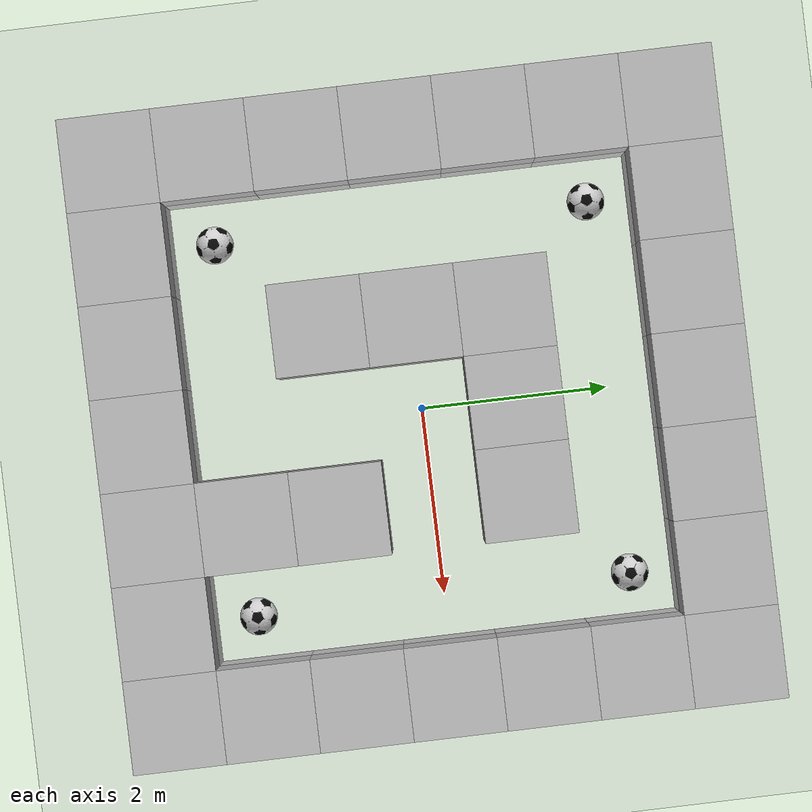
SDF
<?xml version="1.0"?>
<sdf version="1.9">
  <world name="centered_maze_world">

    <physics name="1ms" type="ignored">
      <max_step_size>0.001</max_step_size>
      <real_time_factor>1.0</real_time_factor>
      <dart>
      <collision_detector>ode</collision_detector>
      <solver>
        <solver_type>dantzig</solver_type>
      </solver>
      </dart>
    </physics>
    <plugin filename="gz-sim-physics-system" name="gz::sim::systems::Physics">
	    <engine>
    		<filename>gz-physics-dartsim-plugin</filename>
  	  </engine>
    </plugin>
    <plugin
      filename="gz-sim-user-commands-system"
      name="gz::sim::systems::UserCommands">
    </plugin>
    <plugin
      filename="gz-sim-scene-broadcaster-system"
      name="gz::sim::systems::SceneBroadcaster">
    </plugin>

    <scene>
      <sky>
        <time>23.0</time>
        <clouds>
          <direction>0.5</direction>
          <mean_size>1.0</mean_size>
          <humidity>1.0</humidity>
          <speed>100.0</speed>
          <ambient>1.0 0 0 0</ambient>
        </clouds>
      </sky>
    </scene>

    <!--light-->
    <light type="directional" name="sun">
      <cast_shadows>true</cast_shadows>
      <pose>0 10 10 0 0 0</pose>
      <diffuse>0.8 0.8 0.8 1</diffuse>
      <specular>0.2 0.2 0.2 1</specular>
      <attenuation>
        <range>1000</range>
        <constant>0.9</constant>
        <linear>0.01</linear>
        <quadratic>0.001</quadratic>
      </attenuation>
      <direction>-0.5 0.1 -0.9</direction>
    </light>

	  <include>
      <uri>model://ground_plane</uri>
    </include>

    <model name="wall_0_0">
      <include>
        <uri>model://my_brick_box</uri>
      </include>
      <pose>-3 -3 0 0 0 0</pose>
    </model>
    <model name="wall_1_0">
      <include>
        <uri>model://my_brick_box</uri>
      </include>
      <pose>-2 -3 0 0 0 0</pose>
    </model>
    <model name="wall_2_0">
      <include>
        <uri>model://my_brick_box</uri>
      </include>
      <pose>-1 -3 0 0 0 0</pose>
    </model>
    <model name="wall_3_0">
      <include>
        <uri>model://my_brick_box</uri>
      </include>
      <pose>0 -3 0 0 0 0</pose>
    </model>
    <model name="wall_4_0">
      <include>
        <uri>model://my_brick_box</uri>
      </include>
      <pose>1 -3 0 0 0 0</pose>
    </model>
    <model name="wall_5_0">
      <include>
        <uri>model://my_brick_box</uri>
      </include>
      <pose>2 -3 0 0 0 0</pose>
    </model>
    <model name="wall_6_0">
      <include>
        <uri>model://my_brick_box</uri>
      </include>
      <pose>3 -3 0 0 0 0</pose>
    </model>
    <model name="wall_0_1">
      <include>
        <uri>model://my_brick_box</uri>
      </include>
      <pose>-3 -2 0 0 0 0</pose>
    </model>
    <model name="wall_4_1">
      <include>
        <uri>model://my_brick_box</uri>
      </include>
      <pose>1 -2 0 0 0 0</pose>
    </model>
    <model name="wall_6_1">
      <include>
        <uri>model://my_brick_box</uri>
      </include>
      <pose>3 -2 0 0 0 0</pose>
    </model>
    <model name="wall_0_2">
      <include>
        <uri>model://my_brick_box</uri>
      </include>
      <pose>-3 -1 0 0 0 0</pose>
    </model>
    <model name="wall_2_2">
      <include>
        <uri>model://my_brick_box</uri>
      </include>
      <pose>-1 -1 0 0 0 0</pose>
    </model>
    <model name="wall_4_2">
      <include>
        <uri>model://my_brick_box</uri>
      </include>
      <pose>1 -1 0 0 0 0</pose>
    </model>
    <model name="wall_6_2">
      <include>
        <uri>model://my_brick_box</uri>
      </include>
      <pose>3 -1 0 0 0 0</pose>
    </model>
    <model name="wall_0_3">
      <include>
        <uri>model://my_brick_box</uri>
      </include>
      <pose>-3 0 0 0 0 0</pose>
    </model>
    <model name="wall_2_3">
      <include>
        <uri>model://my_brick_box</uri>
      </include>
      <pose>-1 0 0 0 0 0</pose>
    </model>
    <model name="wall_6_3">
      <include>
        <uri>model://my_brick_box</uri>
      </include>
      <pose>3 0 0 0 0 0</pose>
    </model>
    <model name="wall_0_4">
      <include>
        <uri>model://my_brick_box</uri>
      </include>
      <pose>-3 1 0 0 0 0</pose>
    </model>
    <model name="wall_2_4">
      <include>
        <uri>model://my_brick_box</uri>
      </include>
      <pose>-1 1 0 0 0 0</pose>
    </model>
    <model name="wall_3_4">
      <include>
        <uri>model://my_brick_box</uri>
      </include>
      <pose>0 1 0 0 0 0</pose>
    </model>
    <model name="wall_4_4">
      <include>
        <uri>model://my_brick_box</uri>
      </include>
      <pose>1 1 0 0 0 0</pose>
    </model>
    <model name="wall_6_4">
      <include>
        <uri>model://my_brick_box</uri>
      </include>
      <pose>3 1 0 0 0 0</pose>
    </model>
    <model name="wall_0_5">
      <include>
        <uri>model://my_brick_box</uri>
      </include>
      <pose>-3 2 0 0 0 0</pose>
    </model>
    <model name="wall_6_5">
      <include>
        <uri>model://my_brick_box</uri>
      </include>
      <pose>3 2 0 0 0 0</pose>
    </model>
    <model name="wall_0_6">
      <include>
        <uri>model://my_brick_box</uri>
      </include>
      <pose>-3 3 0 0 0 0</pose>
    </model>
    <model name="wall_1_6">
      <include>
        <uri>model://my_brick_box</uri>
      </include>
      <pose>-2 3 0 0 0 0</pose>
    </model>
    <model name="wall_2_6">
      <include>
        <uri>model://my_brick_box</uri>
      </include>
      <pose>-1 3 0 0 0 0</pose>
    </model>
    <model name="wall_3_6">
      <include>
        <uri>model://my_brick_box</uri>
      </include>
      <pose>0 3 0 0 0 0</pose>
    </model>
    <model name="wall_4_6">
      <include>
        <uri>model://my_brick_box</uri>
      </include>
      <pose>1 3 0 0 0 0</pose>
    </model>
    <model name="wall_5_6">
      <include>
        <uri>model://my_brick_box</uri>
      </include>
      <pose>2 3 0 0 0 0</pose>
    </model>
    <model name="wall_6_6">
      <include>
        <uri>model://my_brick_box</uri>
      </include>
      <pose>3 3 0 0 0 0</pose>
    </model>

    <!-- FOOTBALLS -->
    <model name="ball_0">
      <include>
        <uri>model://robocup_3Dsim_ball</uri>
      </include>
      <pose>-2 2 0 0 0 0</pose>
    </model>
    <model name="ball_1">
      <include>
        <uri>model://robocup_3Dsim_ball</uri>
      </include>
      <pose>2 -2 0 0 0 0</pose>
    </model>
    <model name="ball_2">
      <include>
        <uri>model://robocup_3Dsim_ball</uri>
      </include>
      <pose>2 2 0 0 0 0</pose>
    </model>
    <model name="ball_3">
      <include>
        <uri>model://robocup_3Dsim_ball</uri>
      </include>
      <pose>-2 -2 0 0 0 0</pose>
    </model>
  </world>
</sdf>

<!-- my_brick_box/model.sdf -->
<sdf version="1.5">
  <model name="my_brick_box">
    <static>true</static>
    <link name="chassis">
      <pose>0 0 0 0 0 0</pose>
      <collision name="collision">
        <geometry>
          <box>
            <size>1.0 1.0 1.0</size>
          </box>
        </geometry>
      </collision>
      <visual name="visual">
        <geometry>
          <mesh>
            <uri>model://my_brick_box/meshes/simple_box.dae</uri>
            <scale>1.0 1.0 1.0</scale>
          </mesh>
        </geometry>
      </visual>
    </link>
  </model>
</sdf>

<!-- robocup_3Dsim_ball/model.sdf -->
<sdf version="1.6">
  <model name="soccer_ball">
    <static>false</static>
    <link name="soccer_ball_link">
      <!-- Raise ball center by new radius (0.2) so it rests on the ground -->
      <pose>0 0 0.2 0 0 0</pose>
      <inertial>
        <mass>0.026</mass>
        <!-- Adjust inertia: I = 2/5 * m * r^2 = 2/5 * 0.026 * 0.2^2 -->
        <inertia>
          <ixx>4.16e-4</ixx>
          <iyy>4.16e-4</iyy>
          <izz>4.16e-4</izz>
          <ixy>0</ixy>
          <ixz>0</ixz>
          <iyz>0</iyz>
        </inertia>
      </inertial>
      <collision name="collision">
        <geometry>
          <sphere>
            <radius>0.2</radius>
          </sphere>
        </geometry>
        <surface>
          <friction>
            <ode>
              <!-- Setting friction to moderate values; adjust as needed -->
              <mu>5.0</mu>
              <mu2>5.0</mu2>
            </ode>
          </friction>
          <bounce>
            <restitution_coefficient>1.0</restitution_coefficient>
            <threshold>0.01</threshold>
          </bounce>
        </surface>
      </collision>
      <visual name="visual">
        <geometry>
          <mesh>
            <scale>0.582 0.582 0.582</scale> <!-- 0.15 diameter to 0.2 -->
            <uri>model://robocup_3Dsim_ball/meshes/football2.dae</uri>
          </mesh>
        </geometry>
        <plugin filename="gz-sim-label-system" name="gz::sim::systems::Label">
          <label>0</label>
        </plugin>
      </visual>
      <velocity_decay>
        <!-- Nonzero values here will help slow the ball's motion -->
        <linear>0.5</linear>
        <angular>0.5</angular>
      </velocity_decay>
    </link>
  </model>
</sdf>
